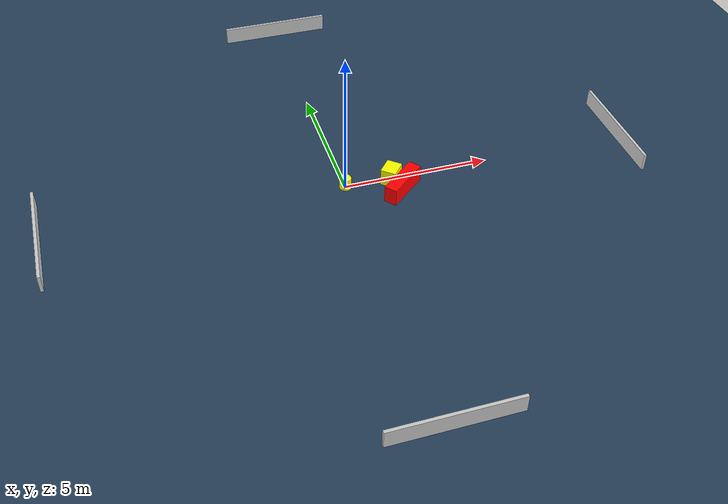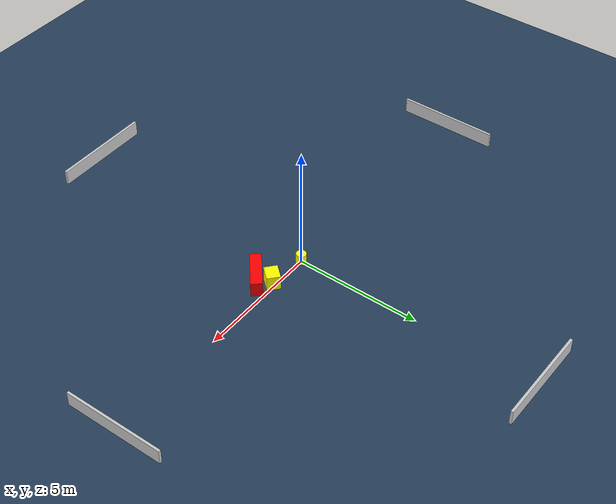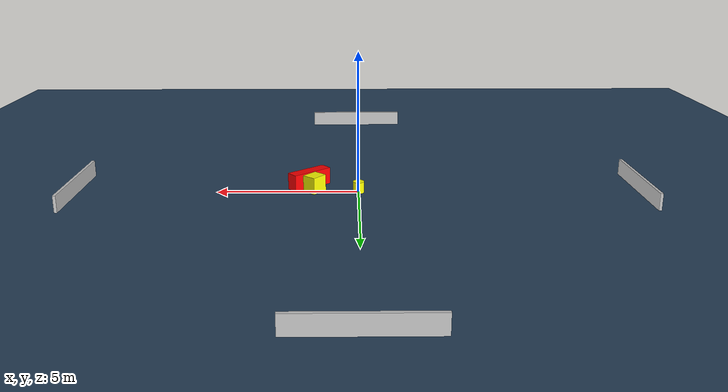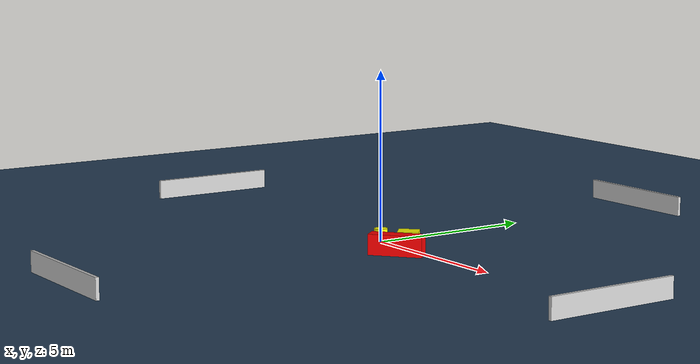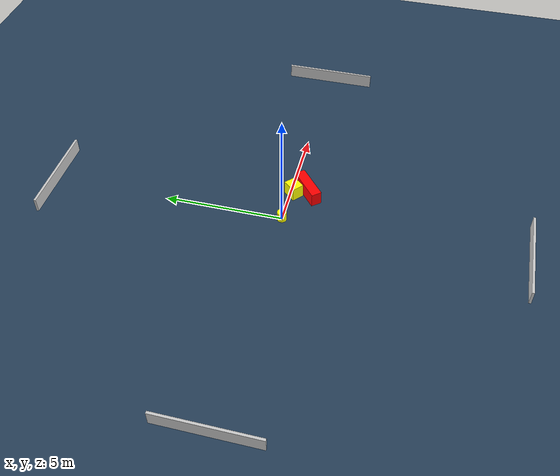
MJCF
<?xml version="1.0" ?>
<mujoco model="generated_environment">
  <option timestep="0.01" integrator="RK4" cone="elliptic"/>
  <default>
    <geom density="1"/>
  </default>
  <asset>
    <texture builtin="gradient" height="3072" name="skybox" rgb1="0.3 0.5 0.7" rgb2="0 0 0" type="skybox" width="512"/>
    <texture builtin="checker" height="300" name="groundplane" rgb1="0.2 0.3 0.4" rgb2="0.1 0.2 0.3" type="2d" width="300"/>
    <material name="groundplane" reflectance="0.2" texrepeat="5 5" texture="groundplane"/>
  </asset>
  <worldbody>
    <light dir="0 0 -1" directional="true" pos="0 0 1.5"/>
    <geom condim="3" friction="0.5 0.005 0.001" material="groundplane" name="floor" pos="0 0 0" size="0 0 0.05" type="plane"/>
    <body name="walls">
      <geom name="wall_1" condim="4" pos="-10.0 0.0 0.3" rgba="0.800000011920929 0.800000011920929 0.800000011920929 1.0" size="0.05 2.0 0.3" type="box"/>
      <geom name="wall_2" condim="4" pos="10.0 0.0 0.3" rgba="0.800000011920929 0.800000011920929 0.800000011920929 1.0" size="0.05 2.0 0.3" type="box"/>
      <geom name="wall_3" condim="4" pos="0.0 -10.0 0.3" rgba="0.800000011920929 0.800000011920929 0.800000011920929 1.0" size="2.0 0.05 0.3" type="box"/>
      <geom name="wall_4" condim="4" pos="0.0 10.0 0.3" rgba="0.800000011920929 0.800000011920929 0.800000011920929 1.0" size="2.0 0.05 0.3" type="box"/>
    </body>
    <body name="robot">
      <joint name="joint_x" type="slide" pos="0 0 0" axis="1 0 0"/>
      <joint name="joint_y" type="slide" pos="0 0 0" axis="0 1 0"/>
      <geom name="robot" type="cylinder" pos="0.0 0.0 0.2" size="0.2 0.2 0.0" mass="5.0" friction="1.0 0.005 0.0001" condim="4" rgba="1.0 1.0 0.0 1.0"/>
    </body>
    <body name="obstacle_1_movable">
      <geom name="obstacle_1_movable" condim="4" pos="1.5647137377356544 -0.1271170257233788 0.3" euler="0 0 49.20978001224539" friction="0.0 0.005 0.001" rgba="1.0 1.0 0.0 1.0" size="0.30481461175856944 0.2609802067329303 0.3" type="box" mass="0.1"/>
      <joint type="free"/>
    </body>
    <body name="obstacle_2_static">
      <geom name="obstacle_2_static" condim="4" pos="1.776665406350151 -0.6941058068217916 0.3" euler="0 0 129.6764749749191" friction="0.0 0.005 0.001" rgba="1.0 0.0 0.0 1.0" size="0.22184237240762603 0.7802403748122253 0.3" type="box"/>
    </body>
  </worldbody>
  <actuator>
    <motor name="actuator_x" joint="joint_x" gear="1" ctrlrange="-1 1"/>
    <motor name="actuator_y" joint="joint_y" gear="1" ctrlrange="-1 1"/>
  </actuator>
</mujoco>
